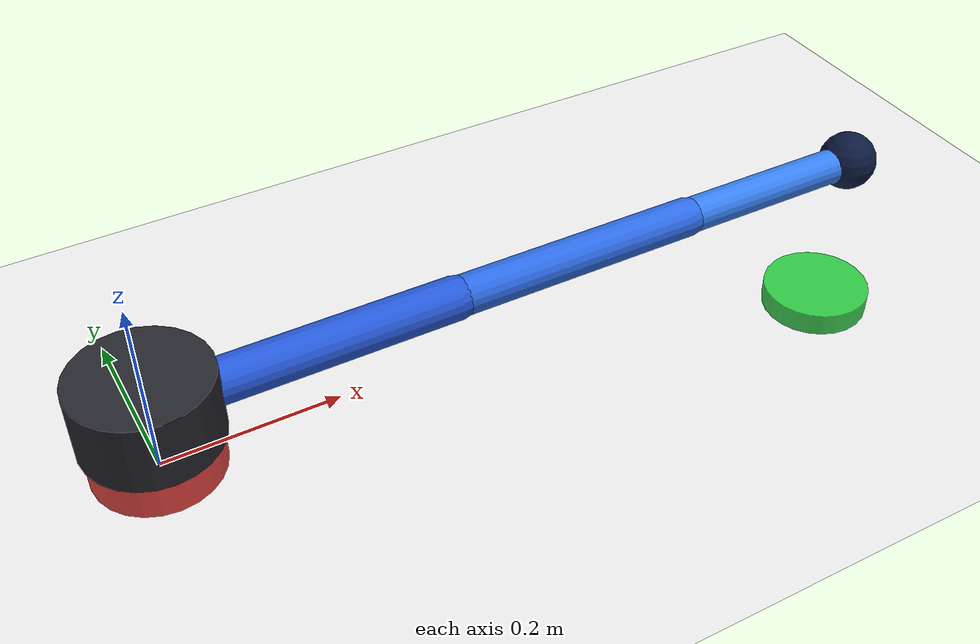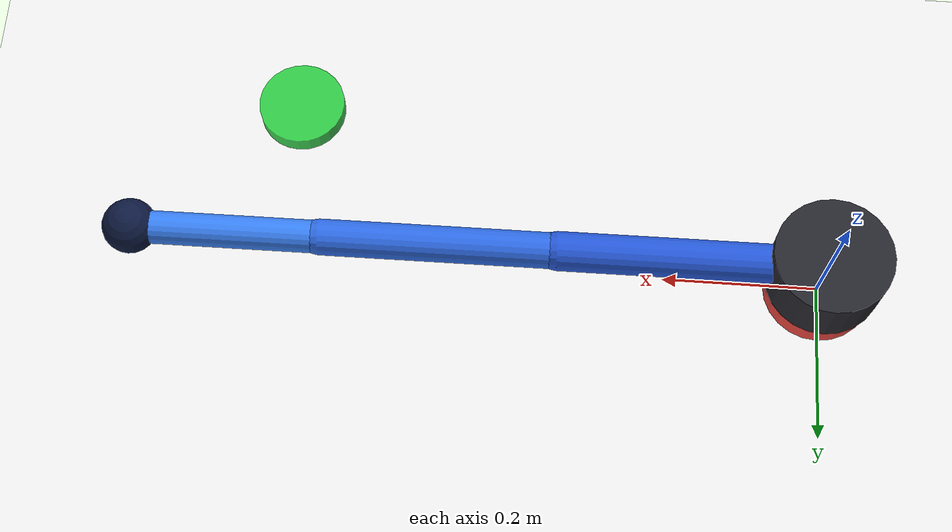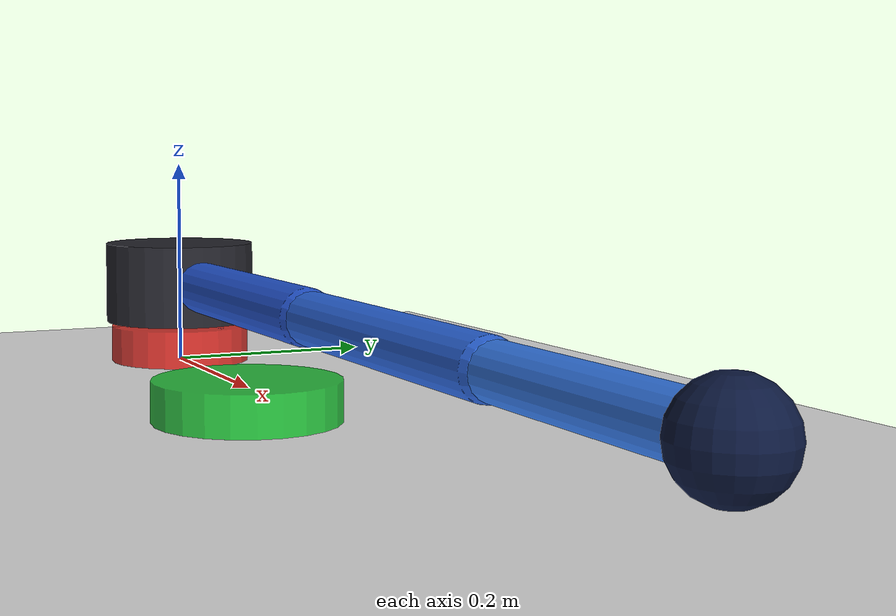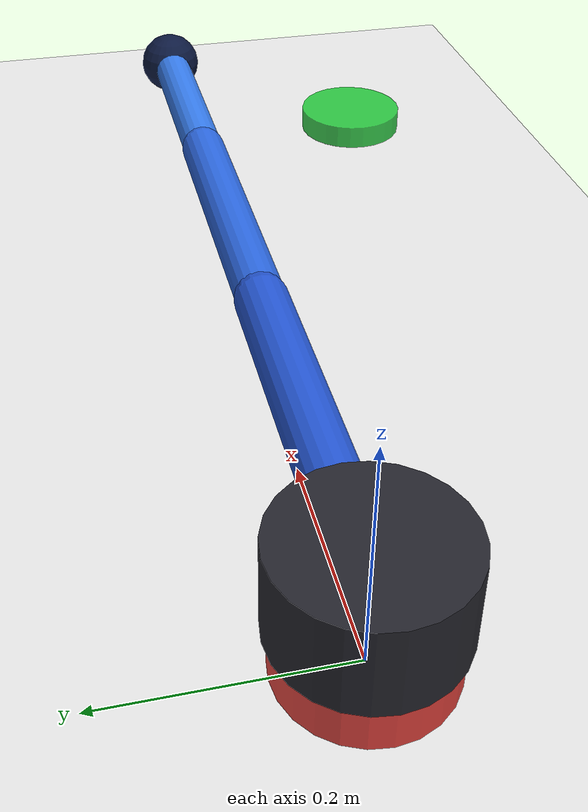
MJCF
<mujoco model="teleop_semantic_planar_arm">
  <compiler angle="radian" autolimits="true"/>
  <option timestep="0.002" integrator="RK4" gravity="0 0 -9.81"/>
  <visual><global offwidth="640" offheight="480"/></visual>
  <default><joint damping="0.8" armature="0.02"/><geom friction="0.8 0.05 0.02" density="500"/></default>
  <worldbody>
    <light pos="0 0 2.5" dir="0 0 -1"/>
    <geom name="floor" type="plane" size="1.2 1.2 0.05" rgba="0.92 0.92 0.92 1" contype="0" conaffinity="0"/>
    <camera name="overhead" pos="0 0 2.2" quat="1 0 0 0"/>
    <body name="base" pos="0 0 0.08">
      <geom type="cylinder" size="0.075 0.04" rgba="0.15 0.15 0.18 1" contype="0" conaffinity="0"/>
      <body name="link1"><joint name="j1" type="hinge" axis="0 0 1" limited="false"/>
        <geom type="capsule" fromto="0 0 0 0.34 0 0" size="0.025" rgba="0.15 0.35 0.85 1" contype="0" conaffinity="0"/>
        <body name="link2" pos="0.34 0 0"><joint name="j2" type="hinge" axis="0 0 1" limited="false"/>
          <geom type="capsule" fromto="0 0 0 0.30 0 0" size="0.023" rgba="0.18 0.42 0.90 1" contype="0" conaffinity="0"/>
          <body name="link3" pos="0.30 0 0"><joint name="j3" type="hinge" axis="0 0 1" limited="false"/>
            <geom type="capsule" fromto="0 0 0 0.24 0 0" size="0.021" rgba="0.22 0.50 0.95 1" contype="0" conaffinity="0"/>
            <site name="eef" pos="0.24 0 0" size="0.035" type="sphere" rgba="0.05 0.10 0.25 1"/>
          </body>
        </body>
      </body>
    </body>
    <body name="target" mocap="true" pos="0.68 -0.18 0.08"><geom type="cylinder" size="0.055 0.012" rgba="0.10 0.80 0.20 0.85" contype="0" conaffinity="0"/></body>
    <body name="obs0" mocap="true"><geom type="cylinder" size="0.070 0.035" rgba="0.90 0.15 0.12 0.85" contype="0" conaffinity="0"/></body>
    <body name="obs1" mocap="true"><geom type="cylinder" size="0.070 0.035" rgba="0.90 0.15 0.12 0.85" contype="0" conaffinity="0"/></body>
    <body name="obs2" mocap="true"><geom type="cylinder" size="0.070 0.035" rgba="0.90 0.15 0.12 0.85" contype="0" conaffinity="0"/></body>
    <body name="obs3" mocap="true"><geom type="cylinder" size="0.060 0.035" rgba="0.65 0.25 0.65 0.75" contype="0" conaffinity="0"/></body>
    <body name="obs4" mocap="true"><geom type="cylinder" size="0.060 0.035" rgba="0.65 0.25 0.65 0.75" contype="0" conaffinity="0"/></body>
    <body name="obs5" mocap="true"><geom type="cylinder" size="0.060 0.035" rgba="0.65 0.25 0.65 0.75" contype="0" conaffinity="0"/></body>
    <body name="obs6" mocap="true"><geom type="cylinder" size="0.060 0.035" rgba="0.65 0.25 0.65 0.75" contype="0" conaffinity="0"/></body>
    <body name="obs7" mocap="true"><geom type="cylinder" size="0.060 0.035" rgba="0.65 0.25 0.65 0.75" contype="0" conaffinity="0"/></body>
  </worldbody>
  <actuator>
    <velocity name="j1_vel" joint="j1" kv="18" ctrllimited="true" ctrlrange="-2.2 2.2"/>
    <velocity name="j2_vel" joint="j2" kv="18" ctrllimited="true" ctrlrange="-2.2 2.2"/>
    <velocity name="j3_vel" joint="j3" kv="14" ctrllimited="true" ctrlrange="-2.2 2.2"/>
  </actuator>
</mujoco>
